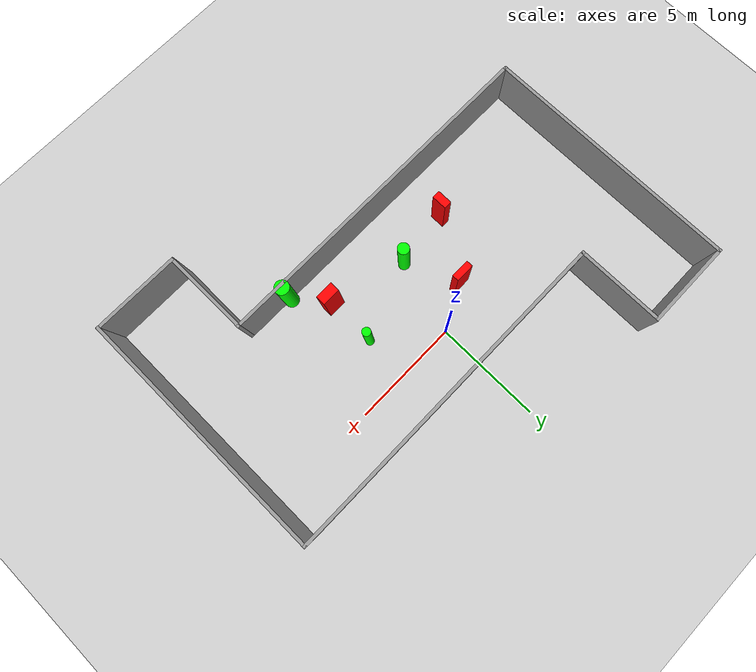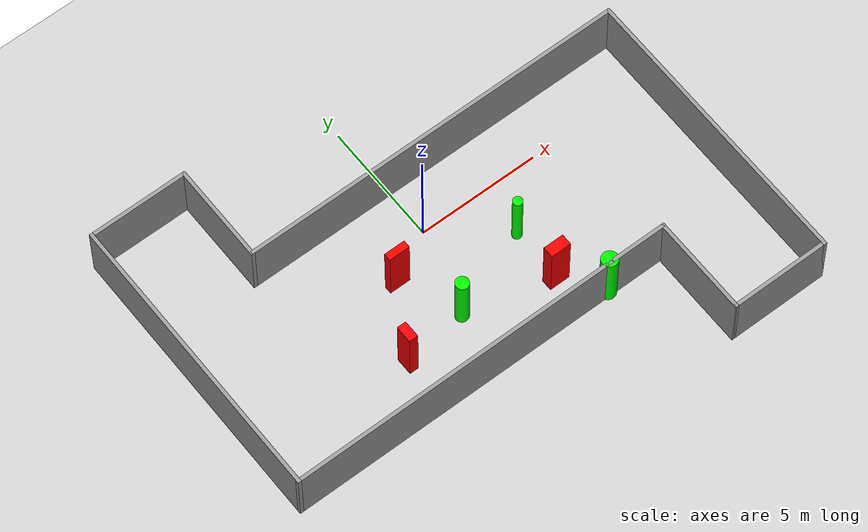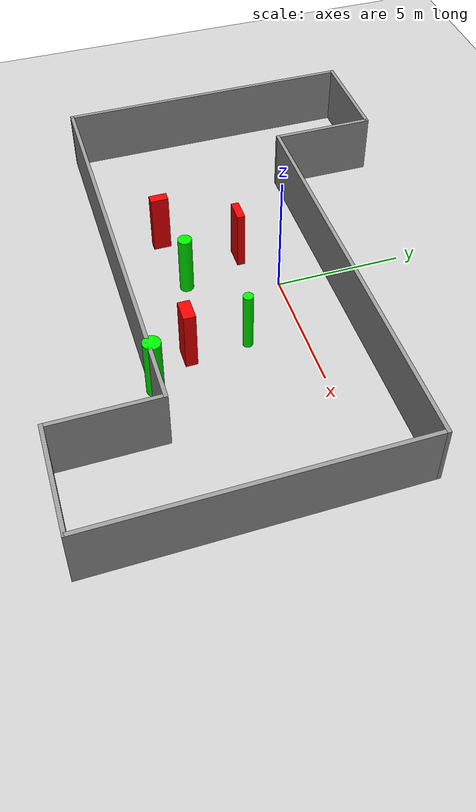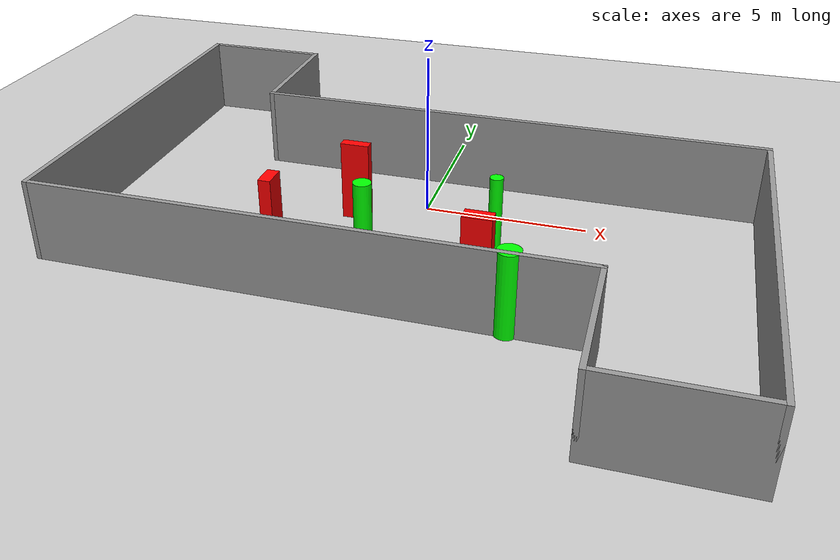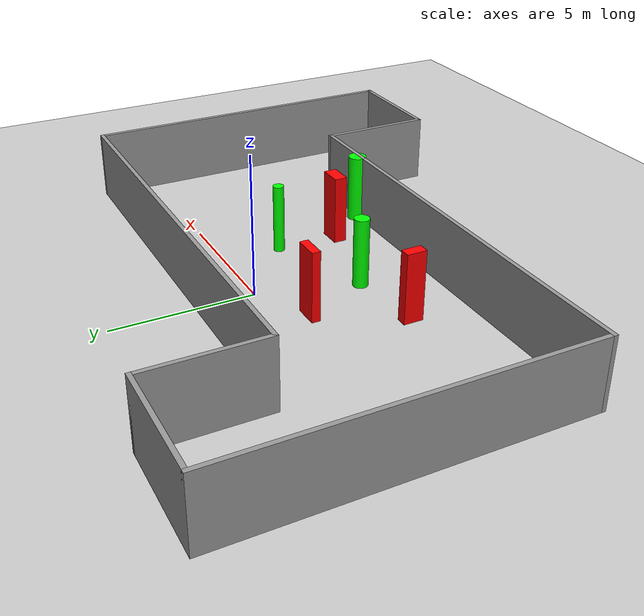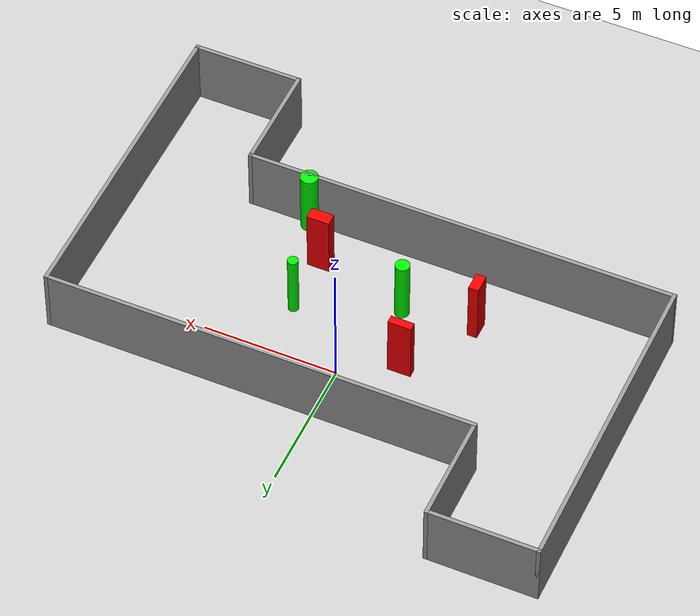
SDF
<sdf version="1.7">
 <world name="default">
  <light name="sun" type="directional">
   <pose>0 0 10 0 -0 0</pose>
   <diffuse>0.8 0.8 0.8 1</diffuse>
   <specular>0.2 0.2 0.2 1</specular>
   <attenuation>
    <range>1000</range>
    <constant>0.9</constant>
    <linear>0.01</linear>
    <quadratic>0.001</quadratic>
   </attenuation>
   <direction>-0.5 0.1 -0.9</direction>
   <spot><inner_angle>0</inner_angle><outer_angle>0</outer_angle><falloff>0</falloff></spot>
  </light>
  <model name="ground_plane">
   <static>1</static>
   <link name="link">
    <collision name="collision">
     <geometry><plane><normal>0 0 1</normal><size>100 100</size></plane></geometry>
     <surface>
      <contact><collide_bitmask>65535</collide_bitmask></contact>
      <friction><ode><mu>100</mu><mu2>50</mu2></ode></friction>
     </surface>
    </collision>
    <visual name="visual">
     <cast_shadows>0</cast_shadows>
     <geometry><plane><normal>0 0 1</normal><size>100 100</size></plane></geometry>
     <material>
      <script><uri>file://media/materials/scripts/gazebo.material</uri><name>Gazebo/Grey</name></script>
     </material>
    </visual>
   </link>
  </model>
  <gravity>0 0 -9.8</gravity>
  <magnetic_field>6e-06 2.3e-05 -4.2e-05</magnetic_field>
  <atmosphere type="adiabatic"/>
  <physics type="ode">
   <max_step_size>0.001</max_step_size>
   <real_time_factor>1</real_time_factor>
   <real_time_update_rate>1000</real_time_update_rate>
  </physics>
  <scene><ambient>0.4 0.4 0.4 1</ambient><background>0.7 0.7 0.7 1</background><shadows>1</shadows></scene>
  <spherical_coordinates>
   <surface_model>EARTH_WGS84</surface_model>
   <latitude_deg>0</latitude_deg>
   <longitude_deg>0</longitude_deg>
   <elevation>0</elevation>
   <heading_deg>0</heading_deg>
  </spherical_coordinates>
  <model name="my_base_walls">
   <link name="Wall_13">
    <collision name="Wall_13_Collision">
     <geometry><box><size>12.15 0.15 2.5</size></box></geometry>
     <pose>0 0 1.25 0 -0 0</pose>
    </collision>
    <visual name="Wall_13_Visual">
     <pose>0 0 1.25 0 -0 0</pose>
     <geometry><box><size>12.15 0.15 2.5</size></box></geometry>
     <material>
      <script><uri>file://media/materials/scripts/gazebo.material</uri><name>Gazebo/Grey</name></script>
      <ambient>1 1 1 1</ambient>
     </material>
     <meta><layer>0</layer></meta>
    </visual>
    <pose>10 -2 0 0 -0 1.5708</pose>
   </link>
   <link name="Wall_15">
    <collision name="Wall_15_Collision">
     <geometry><box><size>16.15 0.15 2.5</size></box></geometry>
     <pose>0 0 1.25 0 -0 0</pose>
    </collision>
    <visual name="Wall_15_Visual">
     <pose>0 0 1.25 0 -0 0</pose>
     <geometry><box><size>16.15 0.15 2.5</size></box></geometry>
     <material>
      <script><uri>file://media/materials/scripts/gazebo.material</uri><name>Gazebo/Grey</name></script>
      <ambient>1 1 1 1</ambient>
     </material>
     <meta><layer>0</layer></meta>
    </visual>
    <pose>2 4 0 0 -0 3.14159</pose>
   </link>
   <link name="Wall_17">
    <collision name="Wall_17_Collision">
     <geometry><box><size>4.15 0.15 2.5</size></box></geometry>
     <pose>0 0 1.25 0 -0 0</pose>
    </collision>
    <visual name="Wall_17_Visual">
     <pose>0 0 1.25 0 -0 0</pose>
     <geometry><box><size>4.15 0.15 2.5</size></box></geometry>
     <material>
      <script><uri>file://media/materials/scripts/gazebo.material</uri><name>Gazebo/Grey</name></script>
      <ambient>1 1 1 1</ambient>
     </material>
     <meta><layer>0</layer></meta>
    </visual>
    <pose>6 -6 0 0 -0 -1.5708</pose>
   </link>
   <link name="Wall_19">
    <collision name="Wall_19_Collision">
     <geometry><box><size>12.15 0.15 2.5</size></box></geometry>
     <pose>0 0 1.25 0 -0 0</pose>
    </collision>
    <visual name="Wall_19_Visual">
     <pose>0 0 1.25 0 -0 0</pose>
     <geometry><box><size>12.15 0.15 2.5</size></box></geometry>
     <material>
      <script><uri>file://media/materials/scripts/gazebo.material</uri><name>Gazebo/Grey</name></script>
      <ambient>1 1 1 1</ambient>
     </material>
     <meta><layer>0</layer></meta>
    </visual>
    <pose>-10 2 0 0 -0 1.5708</pose>
   </link>
   <link name="Wall_21">
    <collision name="Wall_21_Collision">
     <geometry><box><size>4.15 0.15 2.5</size></box></geometry>
     <pose>0 0 1.25 0 -0 0</pose>
    </collision>
    <visual name="Wall_21_Visual">
     <pose>0 0 1.25 0 -0 0</pose>
     <geometry><box><size>4.15 0.15 2.5</size></box></geometry>
     <material>
      <script><uri>file://media/materials/scripts/gazebo.material</uri><name>Gazebo/Grey</name></script>
      <ambient>1 1 1 1</ambient>
     </material>
     <meta><layer>0</layer></meta>
    </visual>
    <pose>-8 8 0 0 -0 0</pose>
   </link>
   <link name="Wall_23">
    <collision name="Wall_23_Collision">
     <geometry><box><size>4.15 0.15 2.5</size></box></geometry>
     <pose>0 0 1.25 0 -0 0</pose>
    </collision>
    <visual name="Wall_23_Visual">
     <pose>0 0 1.25 0 -0 0</pose>
     <geometry><box><size>4.15 0.15 2.5</size></box></geometry>
     <material>
      <script><uri>file://media/materials/scripts/gazebo.material</uri><name>Gazebo/Grey</name></script>
      <ambient>1 1 1 1</ambient>
     </material>
     <meta><layer>0</layer></meta>
    </visual>
    <pose>-6 6 0 0 -0 -1.5708</pose>
   </link>
   <link name="Wall_25">
    <collision name="Wall_25_Collision">
     <geometry><box><size>4.15 0.15 2.5</size></box></geometry>
     <pose>0 0 1.25 0 -0 0</pose>
    </collision>
    <visual name="Wall_25_Visual">
     <pose>0 0 1.25 0 -0 0</pose>
     <geometry><box><size>4.15 0.15 2.5</size></box></geometry>
     <material>
      <script><uri>file://media/materials/scripts/gazebo.material</uri><name>Gazebo/Grey</name></script>
      <ambient>1 1 1 1</ambient>
     </material>
     <meta><layer>0</layer></meta>
    </visual>
    <pose>8 -8 0 0 -0 0</pose>
   </link>
   <link name="Wall_9">
    <collision name="Wall_9_Collision">
     <geometry><box><size>16.15 0.15 2.5</size></box></geometry>
     <pose>0 0 1.25 0 -0 0</pose>
    </collision>
    <visual name="Wall_9_Visual">
     <pose>0 0 1.25 0 -0 0</pose>
     <geometry><box><size>16.15 0.15 2.5</size></box></geometry>
     <material>
      <script><uri>file://media/materials/scripts/gazebo.material</uri><name>Gazebo/Grey</name></script>
      <ambient>1 1 1 1</ambient>
     </material>
     <meta><layer>0</layer></meta>
    </visual>
    <pose>-2 -4 0 0 -0 3.14159</pose>
   </link>
   <static>1</static>
   <pose>-0 -2 0 0 -0 0</pose>
  </model>
  <model name="cylinder1">
   <static>1</static>
   <link name="link">
    <inertial>
     <mass>1</mass>
     <inertia><ixx>0.5</ixx><ixy>0</ixy><ixz>0</ixz><iyy>0.5</iyy><iyz>0</iyz><izz>1</izz></inertia>
    </inertial>
    <collision name="collision">
     <geometry><cylinder><radius>0.3302018051454228</radius><length>2.5</length></cylinder></geometry>
    </collision>
    <visual name="visual">
     <geometry><cylinder><radius>0.3302018051454228</radius><length>2.5</length></cylinder></geometry>
     <material>
      <ambient>0 1 0 1</ambient>
      <diffuse>0 1 0 1</diffuse>
      <specular>0.1 0.1 0.1 1</specular>
      <emissive>0 0 0 0</emissive>
     </material>
    </visual>
   </link>
   <pose>3.6853782758654816 -5.8857728821173625 1.25 0 0 0</pose>
  </model>
  <model name="cylinder2">
   <static>1</static>
   <link name="link">
    <inertial>
     <mass>1</mass>
     <inertia><ixx>0.5</ixx><ixy>0</ixy><ixz>0</ixz><iyy>0.5</iyy><iyz>0</iyz><izz>1</izz></inertia>
    </inertial>
    <collision name="collision">
     <geometry><cylinder><radius>0.2685665234147837</radius><length>2.5</length></cylinder></geometry>
    </collision>
    <visual name="visual">
     <geometry><cylinder><radius>0.2685665234147837</radius><length>2.5</length></cylinder></geometry>
     <material>
      <ambient>0 1 0 1</ambient>
      <diffuse>0 1 0 1</diffuse>
      <specular>0.1 0.1 0.1 1</specular>
      <emissive>0 0 0 0</emissive>
     </material>
    </visual>
   </link>
   <pose>-0.956818431861044 -3.461329806040328 1.25 0 0 0</pose>
  </model>
  <model name="cylinder3">
   <static>1</static>
   <link name="link">
    <inertial>
     <mass>1</mass>
     <inertia><ixx>0.5</ixx><ixy>0</ixy><ixz>0</ixz><iyy>0.5</iyy><iyz>0</iyz><izz>1</izz></inertia>
    </inertial>
    <collision name="collision">
     <geometry><cylinder><radius>0.19536475810648837</radius><length>2.5</length></cylinder></geometry>
    </collision>
    <visual name="visual">
     <geometry><cylinder><radius>0.19536475810648837</radius><length>2.5</length></cylinder></geometry>
     <material>
      <ambient>0 1 0 1</ambient>
      <diffuse>0 1 0 1</diffuse>
      <specular>0.1 0.1 0.1 1</specular>
      <emissive>0 0 0 0</emissive>
     </material>
    </visual>
   </link>
   <pose>2.5806322657764014 -2.1088393433848385 1.25 0 0 0</pose>
  </model>
  <model name="box1">
   <static>1</static>
   <link name="link">
    <inertial>
     <mass>1</mass>
     <inertia><ixx>0.083</ixx><ixy>0</ixy><ixz>0</ixz><iyy>0.083</iyy><iyz>0</iyz><izz>0.083</izz></inertia>
    </inertial>
    <collision name="collision">
     <geometry><box><size>0.8407607066832503 0.4567082811343609 2.5</size></box></geometry>
    </collision>
    <visual name="visual">
     <geometry><box><size>0.8407607066832503 0.4567082811343609 2.5</size></box></geometry>
     <material>
      <ambient>1 0 0 1</ambient>
      <diffuse>1 0 0 1</diffuse>
      <specular>0.1 0.1 0.1 1</specular>
      <emissive>0 0 0 0</emissive>
     </material>
    </visual>
    <sensor name="my_contact" type="contact">
     <contact><collision>box_collision</collision><topic>__default_topic__</topic></contact>
    </sensor>
   </link>
   <pose>2.5619853854444834 -4.358736476323466 1.25 0 0 0</pose>
  </model>
  <model name="box2">
   <static>1</static>
   <link name="link">
    <inertial>
     <mass>1</mass>
     <inertia><ixx>0.083</ixx><ixy>0</ixy><ixz>0</ixz><iyy>0.083</iyy><iyz>0</iyz><izz>0.083</izz></inertia>
    </inertial>
    <collision name="collision">
     <geometry><box><size>0.8698262174060798 0.30447693741857457 2.5</size></box></geometry>
    </collision>
    <visual name="visual">
     <geometry><box><size>0.8698262174060798 0.30447693741857457 2.5</size></box></geometry>
     <material>
      <ambient>1 0 0 1</ambient>
      <diffuse>1 0 0 1</diffuse>
      <specular>0.1 0.1 0.1 1</specular>
      <emissive>0 0 0 0</emissive>
     </material>
    </visual>
    <sensor name="my_contact" type="contact">
     <contact><collision>box_collision</collision><topic>__default_topic__</topic></contact>
    </sensor>
   </link>
   <pose>-1.9654772233300797 -1.0558007251023636 1.25 0 0 0</pose>
  </model>
  <model name="box3">
   <static>1</static>
   <link name="link">
    <inertial>
     <mass>1</mass>
     <inertia><ixx>0.083</ixx><ixy>0</ixy><ixz>0</ixz><iyy>0.083</iyy><iyz>0</iyz><izz>0.083</izz></inertia>
    </inertial>
    <collision name="collision">
     <geometry><box><size>0.3693534389134843 0.6994231502237289 2.5</size></box></geometry>
    </collision>
    <visual name="visual">
     <geometry><box><size>0.3693534389134843 0.6994231502237289 2.5</size></box></geometry>
     <material>
      <ambient>1 0 0 1</ambient>
      <diffuse>1 0 0 1</diffuse>
      <specular>0.1 0.1 0.1 1</specular>
      <emissive>0 0 0 0</emissive>
     </material>
    </visual>
    <sensor name="my_contact" type="contact">
     <contact><collision>box_collision</collision><topic>__default_topic__</topic></contact>
    </sensor>
   </link>
   <pose>-3.6166493575005094 -3.795854246504901 1.25 0 0 0</pose>
  </model>
 </world>
</sdf>
